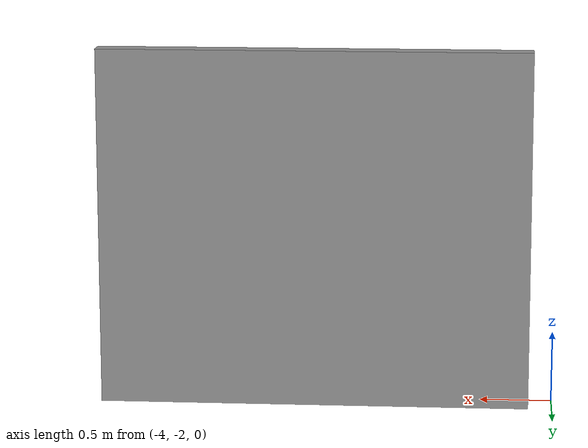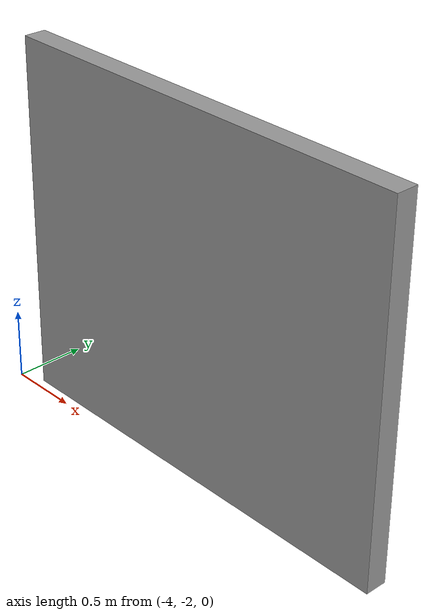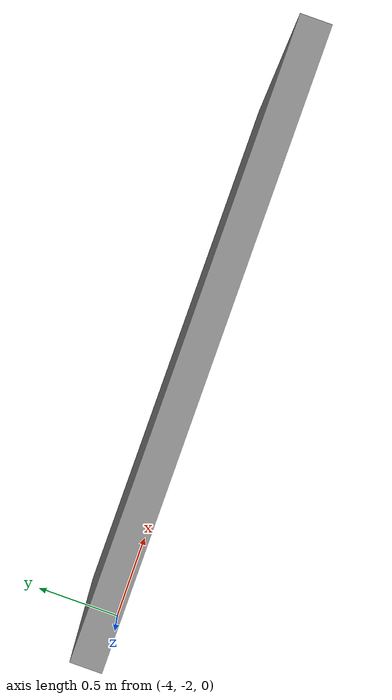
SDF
<?xml version='1.0'?>
<sdf version='1.6'>
  <model name='floor'>
    <pose frame=''>-2.335 -1.86 0 0 -0 0</pose>
    <link name='Wall_0'>
      <collision name='Wall_0_Collision'>
        <geometry>
          <box>
            <size>3 0.15 2.5</size>
          </box>
        </geometry>
        <pose frame=''>0 0 1.25 0 -0 0</pose>
      </collision>
      <visual name='Wall_0_Visual'>
        <pose frame=''>0 0 1.25 0 -0 0</pose>
        <geometry>
          <box>
            <size>3 0.15 2.5</size>
          </box>
        </geometry>
        <material>
          <script>
            <uri>file://media/materials/scripts/gazebo.material</uri>
            <name>Gazebo/Grey</name>
          </script>
          <ambient>1 1 1 1</ambient>
        </material>
      </visual>
      <pose frame=''>0 0 0 0 -0 0</pose>
    </link>
    <static>1</static>
  </model>
</sdf>
